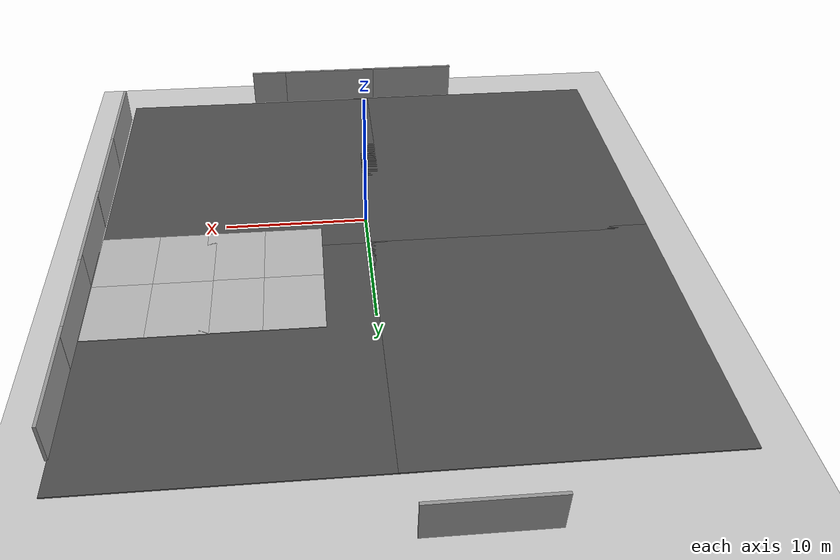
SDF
<sdf version="1.6">
 <world name="default">
  <model name="ground_plane">
   <static>1</static>
   <link name="link">
    <collision name="collision">
     <geometry><plane><normal>0 0 1</normal><size>100 100</size></plane></geometry>
     <surface><friction><ode><mu>100</mu><mu2>50</mu2></ode></friction></surface>
    </collision>
    <visual name="visual">
     <cast_shadows>0</cast_shadows>
     <geometry><plane><normal>0 0 1</normal><size>100 100</size></plane></geometry>
     <material>
      <script><uri>file://media/materials/scripts/gazebo.material</uri><name>Gazebo/Grey</name></script>
     </material>
    </visual>
   </link>
  </model>
  <model name="asphalt_plane">
   <static>1</static>
   <link name="link">
    <collision name="collision">
     <geometry><box><size>20 20 0.1</size></box></geometry>
     <surface><friction><ode><mu>100</mu><mu2>50</mu2></ode></friction></surface>
    </collision>
    <visual name="visual">
     <cast_shadows>0</cast_shadows>
     <geometry><box><size>20 20 0.1</size></box></geometry>
     <material>
      <script>
       <uri>model://asphalt_plane/materials/scripts</uri>
       <uri>model://asphalt_plane/materials/textures</uri>
       <name>vrc/asphalt</name>
      </script>
     </material>
    </visual>
   </link>
   <pose>-10.1692 -7.43707 0 0 -0 0</pose>
  </model>
  <model name="asphalt_plane_clone">
   <static>1</static>
   <link name="link">
    <collision name="collision">
     <geometry><box><size>20 20 0.1</size></box></geometry>
     <surface><friction><ode><mu>100</mu><mu2>50</mu2></ode></friction></surface>
    </collision>
    <visual name="visual">
     <cast_shadows>0</cast_shadows>
     <geometry><box><size>20 20 0.1</size></box></geometry>
     <material>
      <script>
       <uri>model://asphalt_plane/materials/scripts</uri>
       <uri>model://asphalt_plane/materials/textures</uri>
       <name>vrc/asphalt</name>
      </script>
     </material>
    </visual>
   </link>
   <pose>-10.1603 12.171 0 0 -0 0</pose>
  </model>
  <model name="asphalt_plane_clone_clone">
   <static>1</static>
   <link name="link">
    <collision name="collision">
     <geometry><box><size>20 20 0.1</size></box></geometry>
     <surface><friction><ode><mu>100</mu><mu2>50</mu2></ode></friction></surface>
    </collision>
    <visual name="visual">
     <cast_shadows>0</cast_shadows>
     <geometry><box><size>20 20 0.1</size></box></geometry>
     <material>
      <script>
       <uri>model://asphalt_plane/materials/scripts</uri>
       <uri>model://asphalt_plane/materials/textures</uri>
       <name>vrc/asphalt</name>
      </script>
     </material>
    </visual>
   </link>
   <pose>8.71597 12.1785 0 0 -0 0</pose>
  </model>
  <model name="asphalt_plane_clone_clone_0">
   <static>1</static>
   <link name="link">
    <collision name="collision">
     <geometry><box><size>20 20 0.1</size></box></geometry>
     <surface><friction><ode><mu>100</mu><mu2>50</mu2></ode></friction></surface>
    </collision>
    <visual name="visual">
     <cast_shadows>0</cast_shadows>
     <geometry><box><size>20 20 0.1</size></box></geometry>
     <material>
      <script>
       <uri>model://asphalt_plane/materials/scripts</uri>
       <uri>model://asphalt_plane/materials/textures</uri>
       <name>vrc/asphalt</name>
      </script>
     </material>
    </visual>
   </link>
   <pose>8.60996 -7.34898 0 0 -0 0</pose>
  </model>
  <model name="grey_wall">
   <static>1</static>
   <link name="link">
    <pose>0 0 1.4 0 -0 0</pose>
    <collision name="collision"><geometry><box><size>7.5 0.2 2.8</size></box></geometry></collision>
    <visual name="visual">
     <cast_shadows>0</cast_shadows>
     <geometry><box><size>7.5 0.2 2.8</size></box></geometry>
     <material>
      <script>
       <uri>model://grey_wall/materials/scripts</uri>
       <uri>model://grey_wall/materials/textures</uri>
       <name>vrc/grey_wall</name>
      </script>
     </material>
    </visual>
   </link>
   <pose>-4.8114 -17.6626 0 0 -0 0</pose>
  </model>
  <model name="grey_wall_clone">
   <static>1</static>
   <link name="link">
    <pose>0 0 1.4 0 -0 0</pose>
    <collision name="collision"><geometry><box><size>7.5 0.2 2.8</size></box></geometry></collision>
    <visual name="visual">
     <cast_shadows>0</cast_shadows>
     <geometry><box><size>7.5 0.2 2.8</size></box></geometry>
     <material>
      <script>
       <uri>model://grey_wall/materials/scripts</uri>
       <uri>model://grey_wall/materials/textures</uri>
       <name>vrc/grey_wall</name>
      </script>
     </material>
    </visual>
   </link>
   <pose>1.84642 -17.6367 0 0 -0 0</pose>
  </model>
  <model name="grey_wall_clone_0">
   <static>1</static>
   <link name="link">
    <pose>0 0 1.4 0 -0 0</pose>
    <collision name="collision"><geometry><box><size>7.5 0.2 2.8</size></box></geometry></collision>
    <visual name="visual">
     <cast_shadows>0</cast_shadows>
     <geometry><box><size>7.5 0.2 2.8</size></box></geometry>
     <material>
      <script>
       <uri>model://grey_wall/materials/scripts</uri>
       <uri>model://grey_wall/materials/textures</uri>
       <name>vrc/grey_wall</name>
      </script>
     </material>
    </visual>
   </link>
   <pose>4.62088 -17.6372 0 0 -0 0</pose>
  </model>
  <model name="grey_wall_clone_clone">
   <static>1</static>
   <link name="link">
    <pose>0 0 1.4 0 -0 0</pose>
    <collision name="collision"><geometry><box><size>7.5 0.2 2.8</size></box></geometry></collision>
    <visual name="visual">
     <cast_shadows>0</cast_shadows>
     <geometry><box><size>7.5 0.2 2.8</size></box></geometry>
     <material>
      <script>
       <uri>model://grey_wall/materials/scripts</uri>
       <uri>model://grey_wall/materials/textures</uri>
       <name>vrc/grey_wall</name>
      </script>
     </material>
    </visual>
   </link>
   <pose>-4.48764 26.0166 0 0 -0 0</pose>
  </model>
  <model name="grey_wall_clone_clone_clone">
   <static>1</static>
   <link name="link">
    <pose>0 0 1.4 0 -0 0</pose>
    <collision name="collision"><geometry><box><size>7.5 0.2 2.8</size></box></geometry></collision>
    <visual name="visual">
     <cast_shadows>0</cast_shadows>
     <geometry><box><size>7.5 0.2 2.8</size></box></geometry>
     <material>
      <script>
       <uri>model://grey_wall/materials/scripts</uri>
       <uri>model://grey_wall/materials/textures</uri>
       <name>vrc/grey_wall</name>
      </script>
     </material>
    </visual>
   </link>
   <pose>18.7544 16.0387 0 0 0 -1.56734</pose>
  </model>
  <model name="grey_wall_clone_clone_clone_clone">
   <static>1</static>
   <link name="link">
    <pose>0 0 1.4 0 -0 0</pose>
    <collision name="collision"><geometry><box><size>7.5 0.2 2.8</size></box></geometry></collision>
    <visual name="visual">
     <cast_shadows>0</cast_shadows>
     <geometry><box><size>7.5 0.2 2.8</size></box></geometry>
     <material>
      <script>
       <uri>model://grey_wall/materials/scripts</uri>
       <uri>model://grey_wall/materials/textures</uri>
       <name>vrc/grey_wall</name>
      </script>
     </material>
    </visual>
   </link>
   <pose>18.767 9.41754 0 0 0 -1.56734</pose>
  </model>
  <model name="grey_wall_clone_clone_clone_clone_0">
   <static>1</static>
   <link name="link">
    <pose>0 0 1.4 0 -0 0</pose>
    <collision name="collision"><geometry><box><size>7.5 0.2 2.8</size></box></geometry></collision>
    <visual name="visual">
     <cast_shadows>0</cast_shadows>
     <geometry><box><size>7.5 0.2 2.8</size></box></geometry>
     <material>
      <script>
       <uri>model://grey_wall/materials/scripts</uri>
       <uri>model://grey_wall/materials/textures</uri>
       <name>vrc/grey_wall</name>
      </script>
     </material>
    </visual>
   </link>
   <pose>18.7963 2.45369 0 0 0 -1.56734</pose>
  </model>
  <model name="grey_wall_clone_clone_clone_clone_1">
   <static>1</static>
   <link name="link">
    <pose>0 0 1.4 0 -0 0</pose>
    <collision name="collision"><geometry><box><size>7.5 0.2 2.8</size></box></geometry></collision>
    <visual name="visual">
     <cast_shadows>0</cast_shadows>
     <geometry><box><size>7.5 0.2 2.8</size></box></geometry>
     <material>
      <script>
       <uri>model://grey_wall/materials/scripts</uri>
       <uri>model://grey_wall/materials/textures</uri>
       <name>vrc/grey_wall</name>
      </script>
     </material>
    </visual>
   </link>
   <pose>18.8058 -4.41342 0 0 0 -1.56734</pose>
  </model>
  <model name="grey_wall_clone_clone_clone_clone_2">
   <static>1</static>
   <link name="link">
    <pose>0 0 1.4 0 -0 0</pose>
    <collision name="collision"><geometry><box><size>7.5 0.2 2.8</size></box></geometry></collision>
    <visual name="visual">
     <cast_shadows>0</cast_shadows>
     <geometry><box><size>7.5 0.2 2.8</size></box></geometry>
     <material>
      <script>
       <uri>model://grey_wall/materials/scripts</uri>
       <uri>model://grey_wall/materials/textures</uri>
       <name>vrc/grey_wall</name>
      </script>
     </material>
    </visual>
   </link>
   <pose>18.8343 -11.7301 0 0 0 -1.56734</pose>
  </model>
  <model name="mud_box">
   <static>1</static>
   <link name="link">
    <collision name="collision"><geometry><box><size>8 10 0.2</size></box></geometry></collision>
    <visual name="visual_1">
     <pose>-2 2.5 0 0 -0 0</pose>
     <cast_shadows>0</cast_shadows>
     <geometry><box><size>4 5 0.2</size></box></geometry>
     <material>
      <script>
       <uri>model://mud_box/materials/scripts</uri>
       <uri>model://mud_box/materials/textures</uri>
       <name>vrc/mud</name>
      </script>
     </material>
    </visual>
    <visual name="visual_2">
     <pose>2 2.5 0 0 -0 0</pose>
     <cast_shadows>0</cast_shadows>
     <geometry><box><size>4 5 0.2</size></box></geometry>
     <material>
      <script>
       <uri>model://mud_box/materials/scripts</uri>
       <uri>model://mud_box/materials/textures</uri>
       <name>vrc/mud</name>
      </script>
     </material>
    </visual>
    <visual name="visual_3">
     <pose>2 -2.5 0 0 -0 0</pose>
     <cast_shadows>0</cast_shadows>
     <geometry><box><size>4 5 0.2</size></box></geometry>
     <material>
      <script>
       <uri>model://mud_box/materials/scripts</uri>
       <uri>model://mud_box/materials/textures</uri>
       <name>vrc/mud</name>
      </script>
     </material>
    </visual>
    <visual name="visual_4">
     <pose>-2 -2.5 0 0 -0 0</pose>
     <cast_shadows>0</cast_shadows>
     <geometry><box><size>4 5 0.2</size></box></geometry>
     <material>
      <script>
       <uri>model://mud_box/materials/scripts</uri>
       <uri>model://mud_box/materials/textures</uri>
       <name>vrc/mud</name>
      </script>
     </material>
    </visual>
   </link>
   <pose>14.6137 5.86275 0 0 -0 0</pose>
  </model>
  <model name="mud_box_clone">
   <static>1</static>
   <link name="link">
    <collision name="collision"><geometry><box><size>8 10 0.2</size></box></geometry></collision>
    <visual name="visual_1">
     <pose>-2 2.5 0 0 -0 0</pose>
     <cast_shadows>0</cast_shadows>
     <geometry><box><size>4 5 0.2</size></box></geometry>
     <material>
      <script>
       <uri>model://mud_box/materials/scripts</uri>
       <uri>model://mud_box/materials/textures</uri>
       <name>vrc/mud</name>
      </script>
     </material>
    </visual>
    <visual name="visual_2">
     <pose>2 2.5 0 0 -0 0</pose>
     <cast_shadows>0</cast_shadows>
     <geometry><box><size>4 5 0.2</size></box></geometry>
     <material>
      <script>
       <uri>model://mud_box/materials/scripts</uri>
       <uri>model://mud_box/materials/textures</uri>
       <name>vrc/mud</name>
      </script>
     </material>
    </visual>
    <visual name="visual_3">
     <pose>2 -2.5 0 0 -0 0</pose>
     <cast_shadows>0</cast_shadows>
     <geometry><box><size>4 5 0.2</size></box></geometry>
     <material>
      <script>
       <uri>model://mud_box/materials/scripts</uri>
       <uri>model://mud_box/materials/textures</uri>
       <name>vrc/mud</name>
      </script>
     </material>
    </visual>
    <visual name="visual_4">
     <pose>-2 -2.5 0 0 -0 0</pose>
     <cast_shadows>0</cast_shadows>
     <geometry><box><size>4 5 0.2</size></box></geometry>
     <material>
      <script>
       <uri>model://mud_box/materials/scripts</uri>
       <uri>model://mud_box/materials/textures</uri>
       <name>vrc/mud</name>
      </script>
     </material>
    </visual>
   </link>
   <pose>7.23773 5.83307 0 0 -0 0</pose>
  </model>
  <model name="yellow line">
   <static>true</static>
   <link name="link_ground">
    <collision name="collision">
     <geometry><plane><normal>0 0 1</normal><size>0.1 3.2</size></plane></geometry>
     <surface><friction><ode><mu>100</mu><mu2>50</mu2></ode></friction></surface>
    </collision>
    <visual name="visual_ground">
     <cast_shadows>false</cast_shadows>
     <geometry><plane><normal>0 0 1</normal><size>0.1 3.2</size></plane></geometry>
     <material>
      <script><uri>file://media/materials/scripts/gazebo.material</uri><name>Gazebo/Yellow</name></script>
     </material>
    </visual>
   </link>
  </model>
  <model name="yellow line_1">
   <static>1</static>
   <link name="link_ground">
    <collision name="collision">
     <geometry><plane><normal>0 0 1</normal><size>0.1 6.5</size></plane></geometry>
     <surface><friction><ode><mu>100</mu><mu2>50</mu2></ode></friction></surface>
    </collision>
    <visual name="visual_ground">
     <cast_shadows>0</cast_shadows>
     <geometry><plane><normal>0 0 1</normal><size>0.1 6.5</size></plane></geometry>
     <material>
      <script><uri>file://media/materials/scripts/gazebo.material</uri><name>Gazebo/Yellow</name></script>
     </material>
    </visual>
   </link>
   <pose>-1.58753 3.34297 0 0 -0 0</pose>
  </model>
  <model name="yellow line_2">
   <static>1</static>
   <link name="link_ground">
    <collision name="collision">
     <geometry><plane><normal>0 0 1</normal><size>0.1 11</size></plane></geometry>
     <surface><friction><ode><mu>100</mu><mu2>50</mu2></ode></friction></surface>
    </collision>
    <visual name="visual_ground">
     <cast_shadows>0</cast_shadows>
     <geometry><plane><normal>0 0 1</normal><size>0.1 11</size></plane></geometry>
     <material>
      <script><uri>file://media/materials/scripts/gazebo.material</uri><name>Gazebo/Yellow</name></script>
     </material>
    </visual>
   </link>
   <pose>-4.22185 -0.631207 0 0 -0 0</pose>
  </model>
  <model name="yellow line_3">
   <static>1</static>
   <link name="link_ground">
    <collision name="collision">
     <geometry><plane><normal>0 0 1</normal><size>0.1 2</size></plane></geometry>
     <surface><friction><ode><mu>100</mu><mu2>50</mu2></ode></friction></surface>
    </collision>
    <visual name="visual_ground">
     <cast_shadows>0</cast_shadows>
     <geometry><plane><normal>0 0 1</normal><size>0.1 2</size></plane></geometry>
     <material>
      <script><uri>file://media/materials/scripts/gazebo.material</uri><name>Gazebo/Yellow</name></script>
     </material>
    </visual>
   </link>
   <pose>-5.97205 -7.09986 0 0 -0 0</pose>
  </model>
  <light name="sun" type="directional">
   <pose>0 0 10 0 -0 0</pose>
   <diffuse>0.8 0.8 0.8 1</diffuse>
   <specular>0.2 0.2 0.2 1</specular>
   <attenuation>
    <range>1000</range>
    <constant>0.9</constant>
    <linear>0.01</linear>
    <quadratic>0.001</quadratic>
   </attenuation>
   <direction>-0.5 0.1 -0.9</direction>
  </light>
  <gravity>0 0 -9.8</gravity>
  <magnetic_field>6e-06 2.3e-05 -4.2e-05</magnetic_field>
  <atmosphere type="adiabatic"/>
  <physics name="default_physics" default="0" type="ode">
   <max_step_size>0.001</max_step_size>
   <real_time_factor>1</real_time_factor>
   <real_time_update_rate>1000</real_time_update_rate>
  </physics>
  <scene><ambient>0.4 0.4 0.4 1</ambient><background>0.7 0.7 0.7 1</background><shadows>1</shadows></scene>
  <audio><device>default</device></audio>
  <spherical_coordinates>
   <surface_model>EARTH_WGS84</surface_model>
   <latitude_deg>47.840640</latitude_deg>
   <longitude_deg>10.619944</longitude_deg>
   <elevation>740.0</elevation>
   <heading_deg>180</heading_deg>
  </spherical_coordinates>
 </world>
</sdf>
